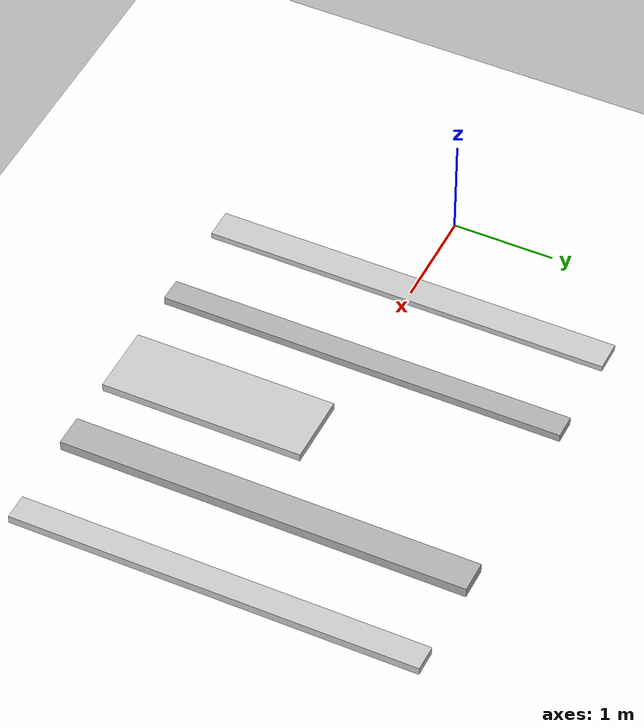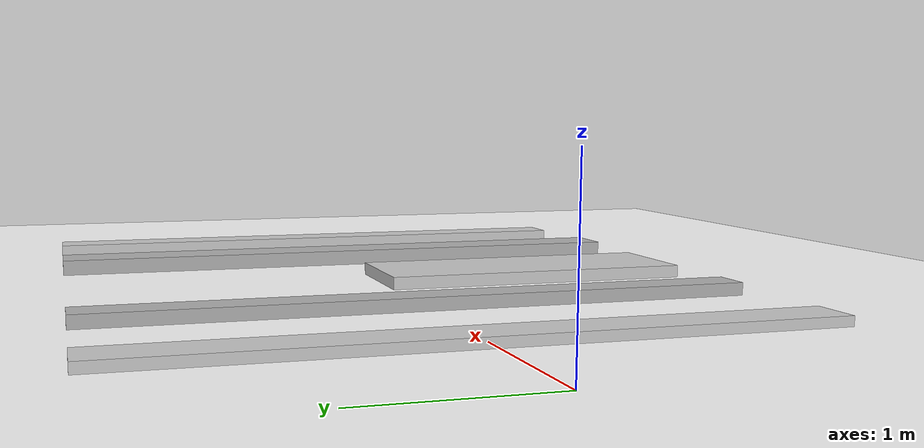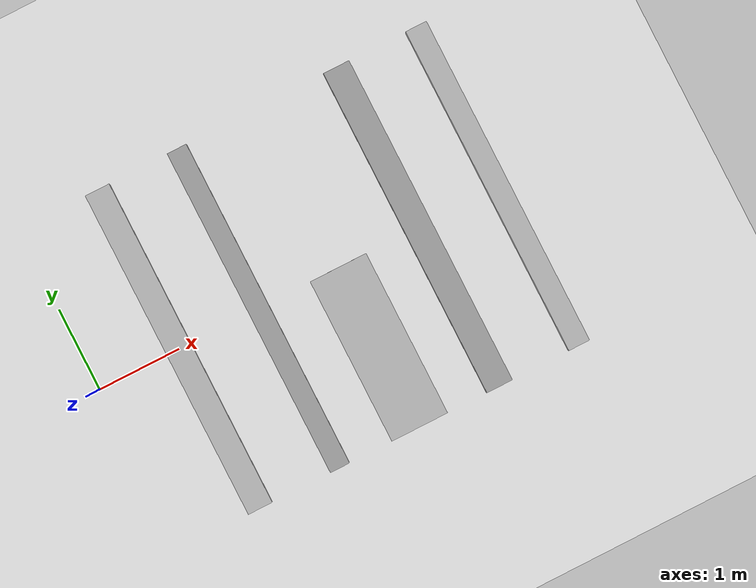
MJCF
<mujoco>

  <asset>
    <texture name="texplane" type="2d" builtin="checker" rgb1="1 1 1" rgb2="1 1 1" width="512" height="512" mark="cross" markrgb="0 0 0"/>
    <material name="matplane" reflectance="0.0" texture="texplane" texrepeat="1 1" texuniform="true"/>
  </asset>

  <worldbody>
    <geom group="1" name="floor" pos="0 0 0" size="0 0 0.25" type="plane" material="matplane" condim="3"/>
    <geom group="1" type="box" pos=" 1.0  0 0.03" size="0.15 2.00 0.03" rgba="0.8 0.8 0.8 1"/>
    <geom group="1" type="box" pos=" 2.0  0 0.04" size="0.12 2.00 0.04" rgba="0.7 0.7 0.7 1"/>
    <geom group="1" type="box" pos=" 3.0 -1 0.04" size="0.35 1.00 0.04" rgba="0.8 0.8 0.8 1"/>
    <geom group="1" type="box" pos=" 4.0  0 0.05" size="0.16 2.00 0.05" rgba="0.7 0.7 0.7 1"/>
    <geom group="1" type="box" pos=" 5.0  0 0.04" size="0.13 2.00 0.04" rgba="0.8 0.8 0.8 1"/>
  </worldbody>

</mujoco>
